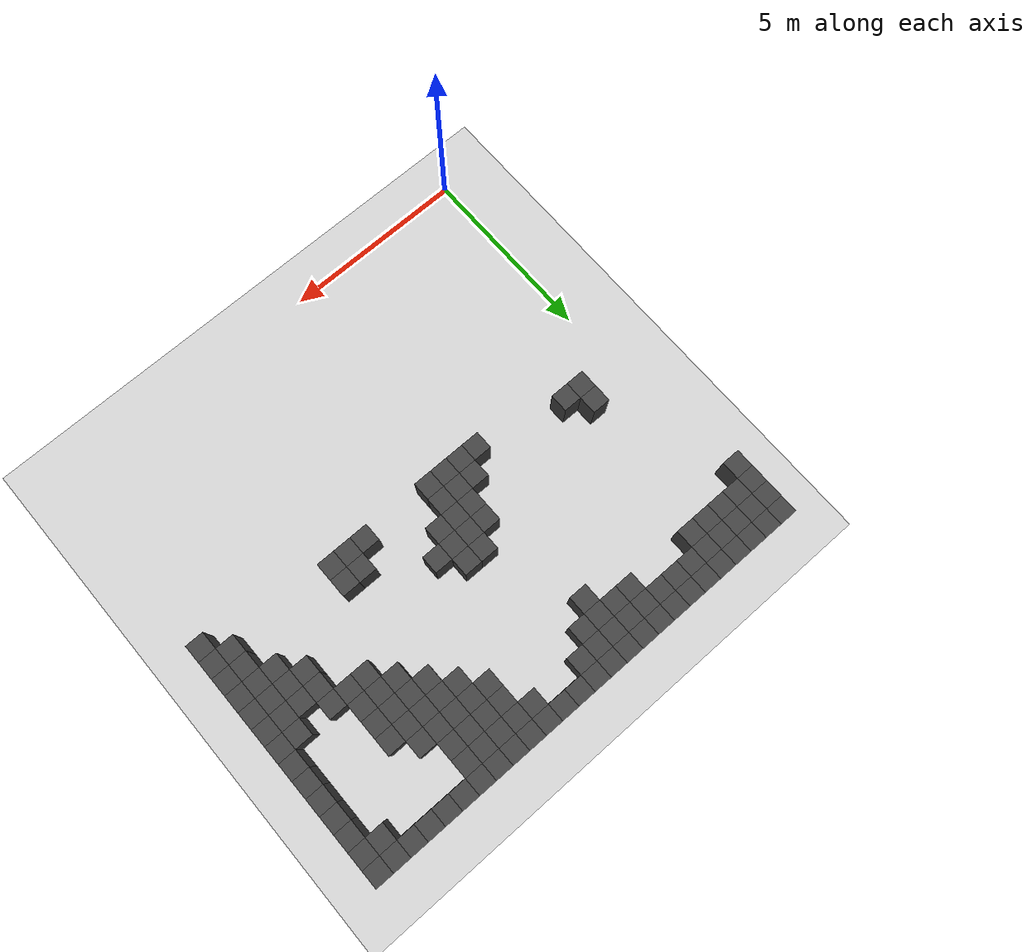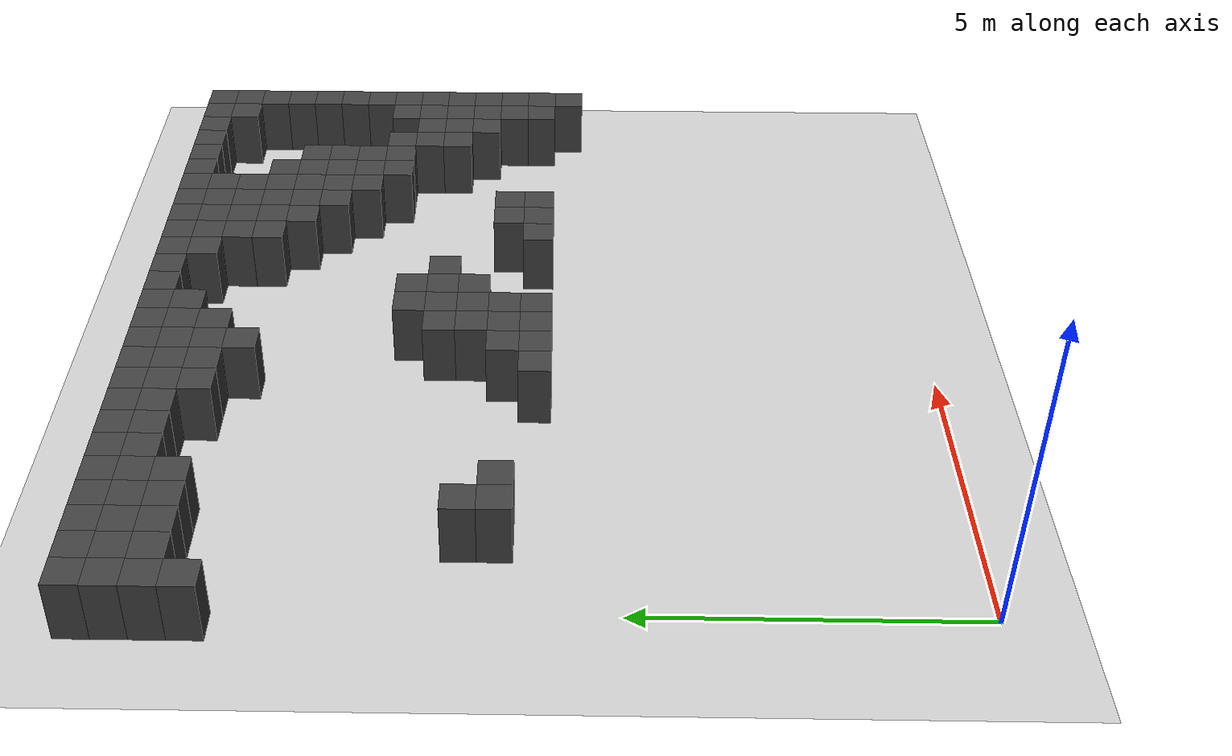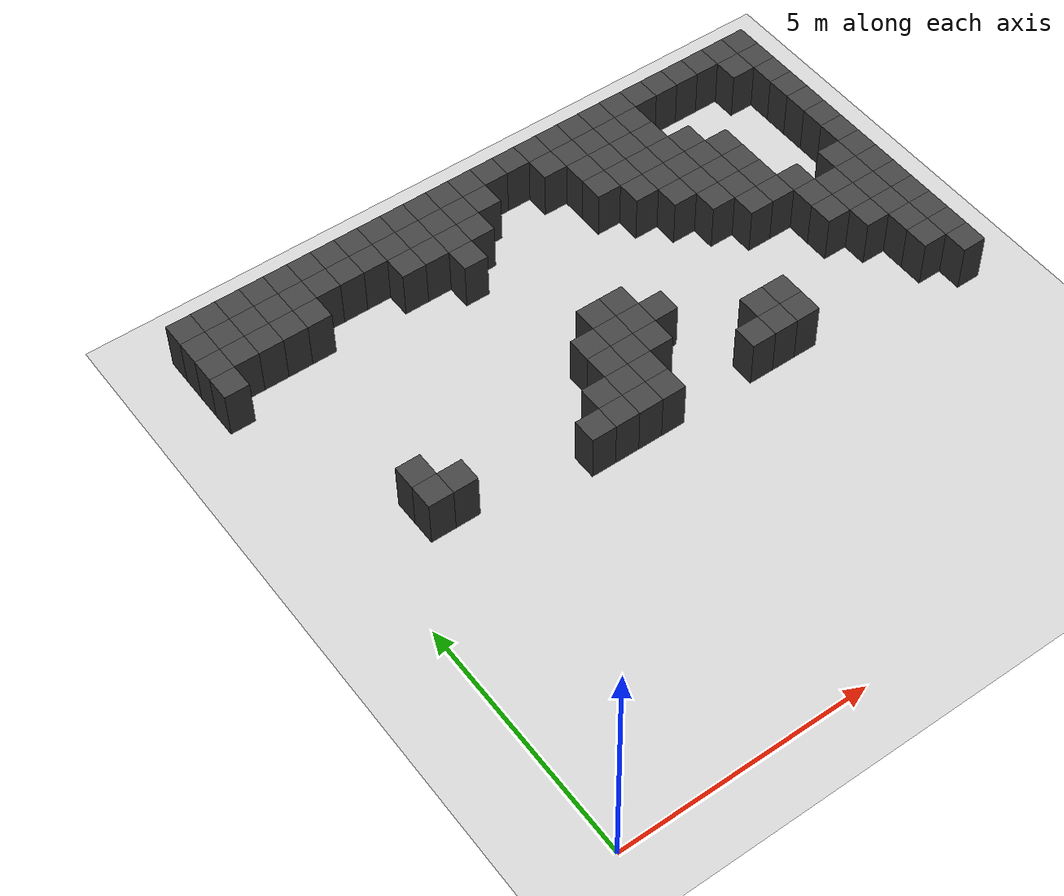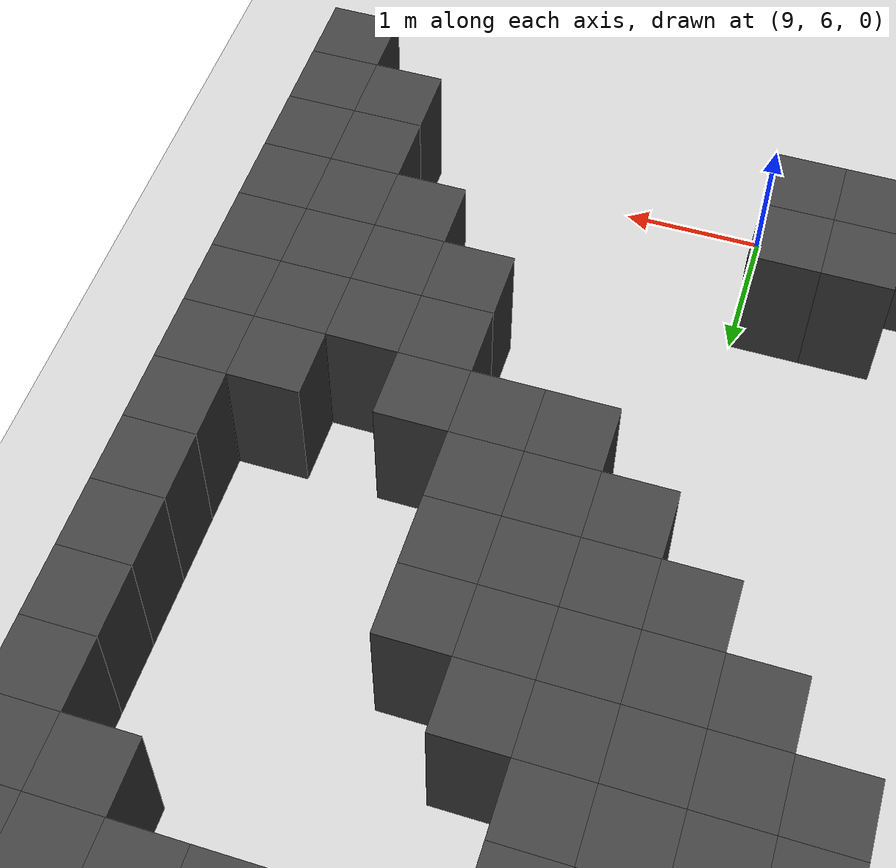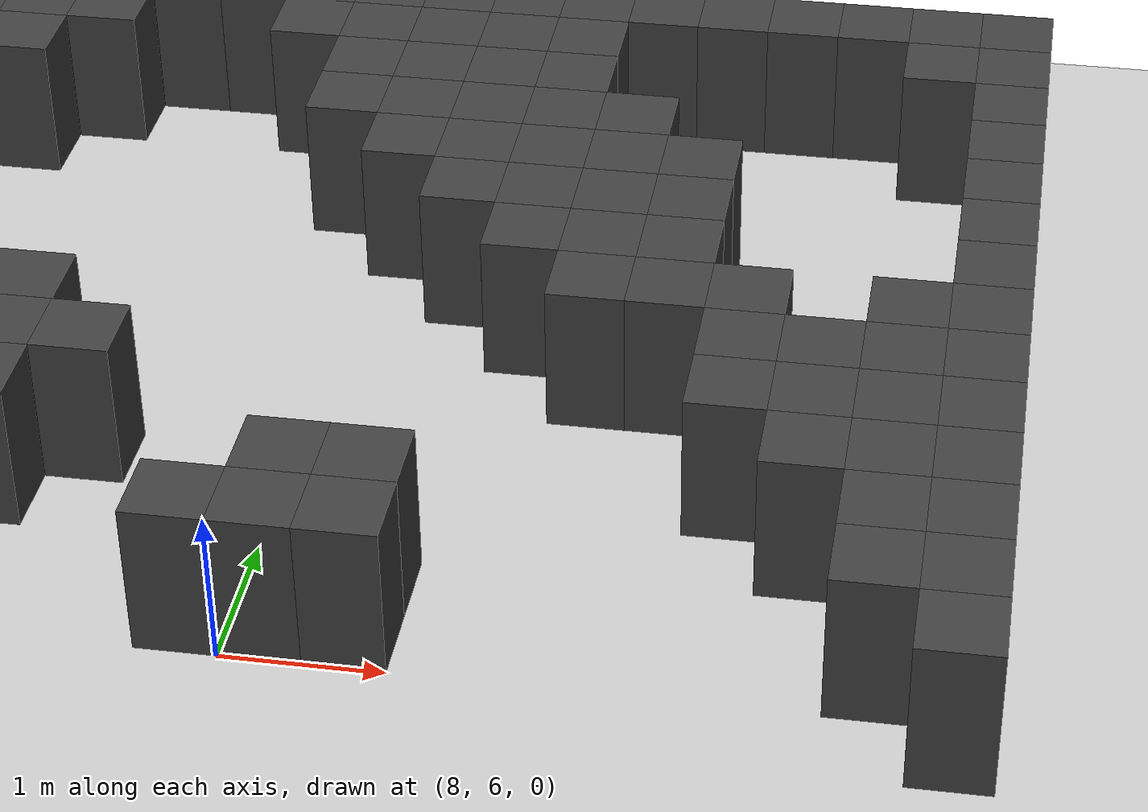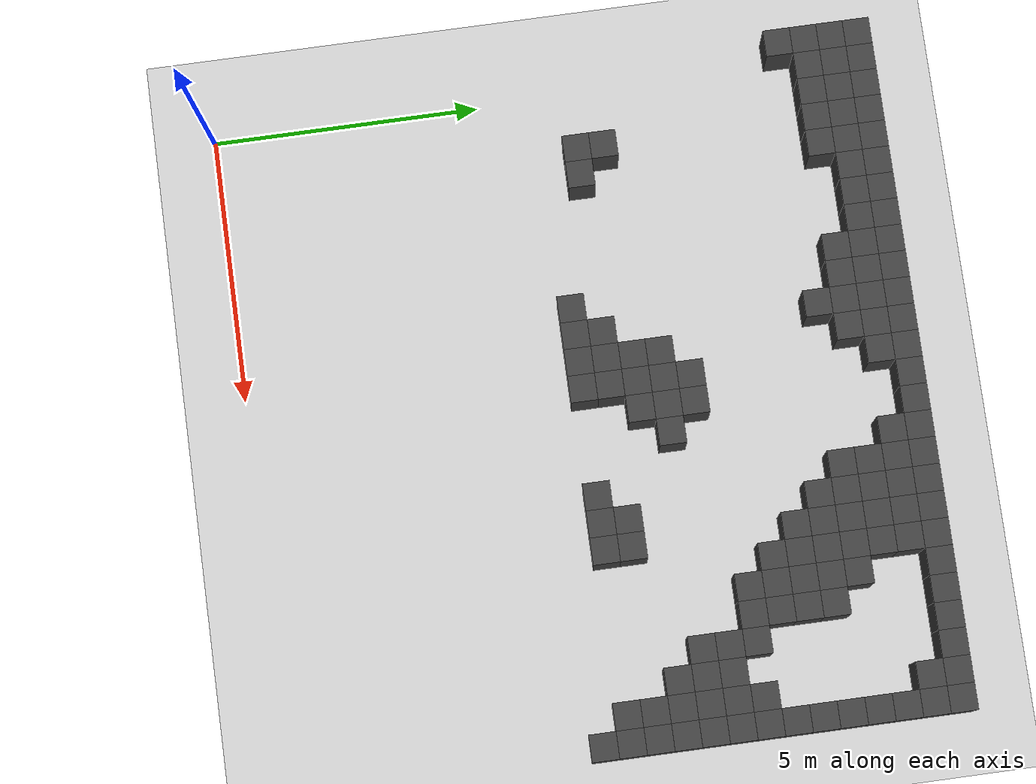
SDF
<sdf version="1.7">
 <world name="map_9713">
  <model name="ground_plane">
   <static>true</static>
   <link name="link">
    <collision name="collision">
     <geometry><plane><normal>0 0 1</normal><size>200 200</size></plane></geometry>
    </collision>
    <visual name="visual">
     <geometry><plane><normal>0 0 1</normal><size>200 200</size></plane></geometry>
     <material><ambient>0.8 0.8 0.8 1</ambient><diffuse>0.8 0.8 0.8 1</diffuse></material>
    </visual>
   </link>
  </model>
  <model name="maze_environment">
   <static>true</static>
   <link name="wall_24">
    <pose>-0.250 12.250 0.500 0 0 0</pose>
    <collision name="col"><geometry><box><size>0.5 0.5 1.0</size></box></geometry></collision>
    <visual name="vis">
     <geometry><box><size>0.5 0.5 1.0</size></box></geometry>
     <material><ambient>0.15 0.15 0.15 1</ambient><diffuse>0.25 0.25 0.25 1</diffuse></material>
    </visual>
   </link>
   <link name="wall_25">
    <pose>0.250 12.250 0.500 0 0 0</pose>
    <collision name="col"><geometry><box><size>0.5 0.5 1.0</size></box></geometry></collision>
    <visual name="vis">
     <geometry><box><size>0.5 0.5 1.0</size></box></geometry>
     <material><ambient>0.15 0.15 0.15 1</ambient><diffuse>0.25 0.25 0.25 1</diffuse></material>
    </visual>
   </link>
   <link name="wall_26">
    <pose>0.750 12.250 0.500 0 0 0</pose>
    <collision name="col"><geometry><box><size>0.5 0.5 1.0</size></box></geometry></collision>
    <visual name="vis">
     <geometry><box><size>0.5 0.5 1.0</size></box></geometry>
     <material><ambient>0.15 0.15 0.15 1</ambient><diffuse>0.25 0.25 0.25 1</diffuse></material>
    </visual>
   </link>
   <link name="wall_27">
    <pose>1.250 12.250 0.500 0 0 0</pose>
    <collision name="col"><geometry><box><size>0.5 0.5 1.0</size></box></geometry></collision>
    <visual name="vis">
     <geometry><box><size>0.5 0.5 1.0</size></box></geometry>
     <material><ambient>0.15 0.15 0.15 1</ambient><diffuse>0.25 0.25 0.25 1</diffuse></material>
    </visual>
   </link>
   <link name="wall_28">
    <pose>1.750 12.250 0.500 0 0 0</pose>
    <collision name="col"><geometry><box><size>0.5 0.5 1.0</size></box></geometry></collision>
    <visual name="vis">
     <geometry><box><size>0.5 0.5 1.0</size></box></geometry>
     <material><ambient>0.15 0.15 0.15 1</ambient><diffuse>0.25 0.25 0.25 1</diffuse></material>
    </visual>
   </link>
   <link name="wall_29">
    <pose>2.250 12.250 0.500 0 0 0</pose>
    <collision name="col"><geometry><box><size>0.5 0.5 1.0</size></box></geometry></collision>
    <visual name="vis">
     <geometry><box><size>0.5 0.5 1.0</size></box></geometry>
     <material><ambient>0.15 0.15 0.15 1</ambient><diffuse>0.25 0.25 0.25 1</diffuse></material>
    </visual>
   </link>
   <link name="wall_30">
    <pose>2.750 12.250 0.500 0 0 0</pose>
    <collision name="col"><geometry><box><size>0.5 0.5 1.0</size></box></geometry></collision>
    <visual name="vis">
     <geometry><box><size>0.5 0.5 1.0</size></box></geometry>
     <material><ambient>0.15 0.15 0.15 1</ambient><diffuse>0.25 0.25 0.25 1</diffuse></material>
    </visual>
   </link>
   <link name="wall_31">
    <pose>3.250 12.250 0.500 0 0 0</pose>
    <collision name="col"><geometry><box><size>0.5 0.5 1.0</size></box></geometry></collision>
    <visual name="vis">
     <geometry><box><size>0.5 0.5 1.0</size></box></geometry>
     <material><ambient>0.15 0.15 0.15 1</ambient><diffuse>0.25 0.25 0.25 1</diffuse></material>
    </visual>
   </link>
   <link name="wall_32">
    <pose>3.750 12.250 0.500 0 0 0</pose>
    <collision name="col"><geometry><box><size>0.5 0.5 1.0</size></box></geometry></collision>
    <visual name="vis">
     <geometry><box><size>0.5 0.5 1.0</size></box></geometry>
     <material><ambient>0.15 0.15 0.15 1</ambient><diffuse>0.25 0.25 0.25 1</diffuse></material>
    </visual>
   </link>
   <link name="wall_33">
    <pose>4.250 12.250 0.500 0 0 0</pose>
    <collision name="col"><geometry><box><size>0.5 0.5 1.0</size></box></geometry></collision>
    <visual name="vis">
     <geometry><box><size>0.5 0.5 1.0</size></box></geometry>
     <material><ambient>0.15 0.15 0.15 1</ambient><diffuse>0.25 0.25 0.25 1</diffuse></material>
    </visual>
   </link>
   <link name="wall_34">
    <pose>4.750 12.250 0.500 0 0 0</pose>
    <collision name="col"><geometry><box><size>0.5 0.5 1.0</size></box></geometry></collision>
    <visual name="vis">
     <geometry><box><size>0.5 0.5 1.0</size></box></geometry>
     <material><ambient>0.15 0.15 0.15 1</ambient><diffuse>0.25 0.25 0.25 1</diffuse></material>
    </visual>
   </link>
   <link name="wall_35">
    <pose>5.250 12.250 0.500 0 0 0</pose>
    <collision name="col"><geometry><box><size>0.5 0.5 1.0</size></box></geometry></collision>
    <visual name="vis">
     <geometry><box><size>0.5 0.5 1.0</size></box></geometry>
     <material><ambient>0.15 0.15 0.15 1</ambient><diffuse>0.25 0.25 0.25 1</diffuse></material>
    </visual>
   </link>
   <link name="wall_36">
    <pose>5.750 12.250 0.500 0 0 0</pose>
    <collision name="col"><geometry><box><size>0.5 0.5 1.0</size></box></geometry></collision>
    <visual name="vis">
     <geometry><box><size>0.5 0.5 1.0</size></box></geometry>
     <material><ambient>0.15 0.15 0.15 1</ambient><diffuse>0.25 0.25 0.25 1</diffuse></material>
    </visual>
   </link>
   <link name="wall_37">
    <pose>6.250 12.250 0.500 0 0 0</pose>
    <collision name="col"><geometry><box><size>0.5 0.5 1.0</size></box></geometry></collision>
    <visual name="vis">
     <geometry><box><size>0.5 0.5 1.0</size></box></geometry>
     <material><ambient>0.15 0.15 0.15 1</ambient><diffuse>0.25 0.25 0.25 1</diffuse></material>
    </visual>
   </link>
   <link name="wall_38">
    <pose>6.750 12.250 0.500 0 0 0</pose>
    <collision name="col"><geometry><box><size>0.5 0.5 1.0</size></box></geometry></collision>
    <visual name="vis">
     <geometry><box><size>0.5 0.5 1.0</size></box></geometry>
     <material><ambient>0.15 0.15 0.15 1</ambient><diffuse>0.25 0.25 0.25 1</diffuse></material>
    </visual>
   </link>
   <link name="wall_39">
    <pose>7.250 12.250 0.500 0 0 0</pose>
    <collision name="col"><geometry><box><size>0.5 0.5 1.0</size></box></geometry></collision>
    <visual name="vis">
     <geometry><box><size>0.5 0.5 1.0</size></box></geometry>
     <material><ambient>0.15 0.15 0.15 1</ambient><diffuse>0.25 0.25 0.25 1</diffuse></material>
    </visual>
   </link>
   <link name="wall_40">
    <pose>7.750 12.250 0.500 0 0 0</pose>
    <collision name="col"><geometry><box><size>0.5 0.5 1.0</size></box></geometry></collision>
    <visual name="vis">
     <geometry><box><size>0.5 0.5 1.0</size></box></geometry>
     <material><ambient>0.15 0.15 0.15 1</ambient><diffuse>0.25 0.25 0.25 1</diffuse></material>
    </visual>
   </link>
   <link name="wall_41">
    <pose>8.250 12.250 0.500 0 0 0</pose>
    <collision name="col"><geometry><box><size>0.5 0.5 1.0</size></box></geometry></collision>
    <visual name="vis">
     <geometry><box><size>0.5 0.5 1.0</size></box></geometry>
     <material><ambient>0.15 0.15 0.15 1</ambient><diffuse>0.25 0.25 0.25 1</diffuse></material>
    </visual>
   </link>
   <link name="wall_42">
    <pose>8.750 12.250 0.500 0 0 0</pose>
    <collision name="col"><geometry><box><size>0.5 0.5 1.0</size></box></geometry></collision>
    <visual name="vis">
     <geometry><box><size>0.5 0.5 1.0</size></box></geometry>
     <material><ambient>0.15 0.15 0.15 1</ambient><diffuse>0.25 0.25 0.25 1</diffuse></material>
    </visual>
   </link>
   <link name="wall_43">
    <pose>9.250 12.250 0.500 0 0 0</pose>
    <collision name="col"><geometry><box><size>0.5 0.5 1.0</size></box></geometry></collision>
    <visual name="vis">
     <geometry><box><size>0.5 0.5 1.0</size></box></geometry>
     <material><ambient>0.15 0.15 0.15 1</ambient><diffuse>0.25 0.25 0.25 1</diffuse></material>
    </visual>
   </link>
   <link name="wall_44">
    <pose>9.750 12.250 0.500 0 0 0</pose>
    <collision name="col"><geometry><box><size>0.5 0.5 1.0</size></box></geometry></collision>
    <visual name="vis">
     <geometry><box><size>0.5 0.5 1.0</size></box></geometry>
     <material><ambient>0.15 0.15 0.15 1</ambient><diffuse>0.25 0.25 0.25 1</diffuse></material>
    </visual>
   </link>
   <link name="wall_45">
    <pose>10.250 12.250 0.500 0 0 0</pose>
    <collision name="col"><geometry><box><size>0.5 0.5 1.0</size></box></geometry></collision>
    <visual name="vis">
     <geometry><box><size>0.5 0.5 1.0</size></box></geometry>
     <material><ambient>0.15 0.15 0.15 1</ambient><diffuse>0.25 0.25 0.25 1</diffuse></material>
    </visual>
   </link>
   <link name="wall_46">
    <pose>10.750 12.250 0.500 0 0 0</pose>
    <collision name="col"><geometry><box><size>0.5 0.5 1.0</size></box></geometry></collision>
    <visual name="vis">
     <geometry><box><size>0.5 0.5 1.0</size></box></geometry>
     <material><ambient>0.15 0.15 0.15 1</ambient><diffuse>0.25 0.25 0.25 1</diffuse></material>
    </visual>
   </link>
   <link name="wall_47">
    <pose>11.250 12.250 0.500 0 0 0</pose>
    <collision name="col"><geometry><box><size>0.5 0.5 1.0</size></box></geometry></collision>
    <visual name="vis">
     <geometry><box><size>0.5 0.5 1.0</size></box></geometry>
     <material><ambient>0.15 0.15 0.15 1</ambient><diffuse>0.25 0.25 0.25 1</diffuse></material>
    </visual>
   </link>
   <link name="wall_48">
    <pose>11.750 12.250 0.500 0 0 0</pose>
    <collision name="col"><geometry><box><size>0.5 0.5 1.0</size></box></geometry></collision>
    <visual name="vis">
     <geometry><box><size>0.5 0.5 1.0</size></box></geometry>
     <material><ambient>0.15 0.15 0.15 1</ambient><diffuse>0.25 0.25 0.25 1</diffuse></material>
    </visual>
   </link>
   <link name="wall_49">
    <pose>12.250 12.250 0.500 0 0 0</pose>
    <collision name="col"><geometry><box><size>0.5 0.5 1.0</size></box></geometry></collision>
    <visual name="vis">
     <geometry><box><size>0.5 0.5 1.0</size></box></geometry>
     <material><ambient>0.15 0.15 0.15 1</ambient><diffuse>0.25 0.25 0.25 1</diffuse></material>
    </visual>
   </link>
   <link name="wall_62">
    <pose>-0.250 11.750 0.500 0 0 0</pose>
    <collision name="col"><geometry><box><size>0.5 0.5 1.0</size></box></geometry></collision>
    <visual name="vis">
     <geometry><box><size>0.5 0.5 1.0</size></box></geometry>
     <material><ambient>0.15 0.15 0.15 1</ambient><diffuse>0.25 0.25 0.25 1</diffuse></material>
    </visual>
   </link>
   <link name="wall_63">
    <pose>0.250 11.750 0.500 0 0 0</pose>
    <collision name="col"><geometry><box><size>0.5 0.5 1.0</size></box></geometry></collision>
    <visual name="vis">
     <geometry><box><size>0.5 0.5 1.0</size></box></geometry>
     <material><ambient>0.15 0.15 0.15 1</ambient><diffuse>0.25 0.25 0.25 1</diffuse></material>
    </visual>
   </link>
   <link name="wall_64">
    <pose>0.750 11.750 0.500 0 0 0</pose>
    <collision name="col"><geometry><box><size>0.5 0.5 1.0</size></box></geometry></collision>
    <visual name="vis">
     <geometry><box><size>0.5 0.5 1.0</size></box></geometry>
     <material><ambient>0.15 0.15 0.15 1</ambient><diffuse>0.25 0.25 0.25 1</diffuse></material>
    </visual>
   </link>
   <link name="wall_65">
    <pose>1.250 11.750 0.500 0 0 0</pose>
    <collision name="col"><geometry><box><size>0.5 0.5 1.0</size></box></geometry></collision>
    <visual name="vis">
     <geometry><box><size>0.5 0.5 1.0</size></box></geometry>
     <material><ambient>0.15 0.15 0.15 1</ambient><diffuse>0.25 0.25 0.25 1</diffuse></material>
    </visual>
   </link>
   <link name="wall_66">
    <pose>1.750 11.750 0.500 0 0 0</pose>
    <collision name="col"><geometry><box><size>0.5 0.5 1.0</size></box></geometry></collision>
    <visual name="vis">
     <geometry><box><size>0.5 0.5 1.0</size></box></geometry>
     <material><ambient>0.15 0.15 0.15 1</ambient><diffuse>0.25 0.25 0.25 1</diffuse></material>
    </visual>
   </link>
   <link name="wall_67">
    <pose>2.250 11.750 0.500 0 0 0</pose>
    <collision name="col"><geometry><box><size>0.5 0.5 1.0</size></box></geometry></collision>
    <visual name="vis">
     <geometry><box><size>0.5 0.5 1.0</size></box></geometry>
     <material><ambient>0.15 0.15 0.15 1</ambient><diffuse>0.25 0.25 0.25 1</diffuse></material>
    </visual>
   </link>
   <link name="wall_68">
    <pose>2.750 11.750 0.500 0 0 0</pose>
    <collision name="col"><geometry><box><size>0.5 0.5 1.0</size></box></geometry></collision>
    <visual name="vis">
     <geometry><box><size>0.5 0.5 1.0</size></box></geometry>
     <material><ambient>0.15 0.15 0.15 1</ambient><diffuse>0.25 0.25 0.25 1</diffuse></material>
    </visual>
   </link>
   <link name="wall_69">
    <pose>3.250 11.750 0.500 0 0 0</pose>
    <collision name="col"><geometry><box><size>0.5 0.5 1.0</size></box></geometry></collision>
    <visual name="vis">
     <geometry><box><size>0.5 0.5 1.0</size></box></geometry>
     <material><ambient>0.15 0.15 0.15 1</ambient><diffuse>0.25 0.25 0.25 1</diffuse></material>
    </visual>
   </link>
   <link name="wall_70">
    <pose>3.750 11.750 0.500 0 0 0</pose>
    <collision name="col"><geometry><box><size>0.5 0.5 1.0</size></box></geometry></collision>
    <visual name="vis">
     <geometry><box><size>0.5 0.5 1.0</size></box></geometry>
     <material><ambient>0.15 0.15 0.15 1</ambient><diffuse>0.25 0.25 0.25 1</diffuse></material>
    </visual>
   </link>
   <link name="wall_71">
    <pose>4.250 11.750 0.500 0 0 0</pose>
    <collision name="col"><geometry><box><size>0.5 0.5 1.0</size></box></geometry></collision>
    <visual name="vis">
     <geometry><box><size>0.5 0.5 1.0</size></box></geometry>
     <material><ambient>0.15 0.15 0.15 1</ambient><diffuse>0.25 0.25 0.25 1</diffuse></material>
    </visual>
   </link>
   <link name="wall_72">
    <pose>4.750 11.750 0.500 0 0 0</pose>
    <collision name="col"><geometry><box><size>0.5 0.5 1.0</size></box></geometry></collision>
    <visual name="vis">
     <geometry><box><size>0.5 0.5 1.0</size></box></geometry>
     <material><ambient>0.15 0.15 0.15 1</ambient><diffuse>0.25 0.25 0.25 1</diffuse></material>
    </visual>
   </link>
   <link name="wall_73">
    <pose>5.250 11.750 0.500 0 0 0</pose>
    <collision name="col"><geometry><box><size>0.5 0.5 1.0</size></box></geometry></collision>
    <visual name="vis">
     <geometry><box><size>0.5 0.5 1.0</size></box></geometry>
     <material><ambient>0.15 0.15 0.15 1</ambient><diffuse>0.25 0.25 0.25 1</diffuse></material>
    </visual>
   </link>
   <link name="wall_74">
    <pose>5.750 11.750 0.500 0 0 0</pose>
    <collision name="col"><geometry><box><size>0.5 0.5 1.0</size></box></geometry></collision>
    <visual name="vis">
     <geometry><box><size>0.5 0.5 1.0</size></box></geometry>
     <material><ambient>0.15 0.15 0.15 1</ambient><diffuse>0.25 0.25 0.25 1</diffuse></material>
    </visual>
   </link>
   <link name="wall_75">
    <pose>7.250 11.750 0.500 0 0 0</pose>
    <collision name="col"><geometry><box><size>0.5 0.5 1.0</size></box></geometry></collision>
    <visual name="vis">
     <geometry><box><size>0.5 0.5 1.0</size></box></geometry>
     <material><ambient>0.15 0.15 0.15 1</ambient><diffuse>0.25 0.25 0.25 1</diffuse></material>
    </visual>
   </link>
   <link name="wall_76">
    <pose>7.750 11.750 0.500 0 0 0</pose>
    <collision name="col"><geometry><box><size>0.5 0.5 1.0</size></box></geometry></collision>
    <visual name="vis">
     <geometry><box><size>0.5 0.5 1.0</size></box></geometry>
     <material><ambient>0.15 0.15 0.15 1</ambient><diffuse>0.25 0.25 0.25 1</diffuse></material>
    </visual>
   </link>
   <link name="wall_77">
    <pose>8.250 11.750 0.500 0 0 0</pose>
    <collision name="col"><geometry><box><size>0.5 0.5 1.0</size></box></geometry></collision>
    <visual name="vis">
     <geometry><box><size>0.5 0.5 1.0</size></box></geometry>
     <material><ambient>0.15 0.15 0.15 1</ambient><diffuse>0.25 0.25 0.25 1</diffuse></material>
    </visual>
   </link>
   <link name="wall_78">
    <pose>8.750 11.750 0.500 0 0 0</pose>
    <collision name="col"><geometry><box><size>0.5 0.5 1.0</size></box></geometry></collision>
    <visual name="vis">
     <geometry><box><size>0.5 0.5 1.0</size></box></geometry>
     <material><ambient>0.15 0.15 0.15 1</ambient><diffuse>0.25 0.25 0.25 1</diffuse></material>
    </visual>
   </link>
   <link name="wall_79">
    <pose>9.250 11.750 0.500 0 0 0</pose>
    <collision name="col"><geometry><box><size>0.5 0.5 1.0</size></box></geometry></collision>
    <visual name="vis">
     <geometry><box><size>0.5 0.5 1.0</size></box></geometry>
     <material><ambient>0.15 0.15 0.15 1</ambient><diffuse>0.25 0.25 0.25 1</diffuse></material>
    </visual>
   </link>
   <link name="wall_80">
    <pose>11.750 11.750 0.500 0 0 0</pose>
    <collision name="col"><geometry><box><size>0.5 0.5 1.0</size></box></geometry></collision>
    <visual name="vis">
     <geometry><box><size>0.5 0.5 1.0</size></box></geometry>
     <material><ambient>0.15 0.15 0.15 1</ambient><diffuse>0.25 0.25 0.25 1</diffuse></material>
    </visual>
   </link>
   <link name="wall_81">
    <pose>12.250 11.750 0.500 0 0 0</pose>
    <collision name="col"><geometry><box><size>0.5 0.5 1.0</size></box></geometry></collision>
    <visual name="vis">
     <geometry><box><size>0.5 0.5 1.0</size></box></geometry>
     <material><ambient>0.15 0.15 0.15 1</ambient><diffuse>0.25 0.25 0.25 1</diffuse></material>
    </visual>
   </link>
   <link name="wall_91">
    <pose>-0.250 11.250 0.500 0 0 0</pose>
    <collision name="col"><geometry><box><size>0.5 0.5 1.0</size></box></geometry></collision>
    <visual name="vis">
     <geometry><box><size>0.5 0.5 1.0</size></box></geometry>
     <material><ambient>0.15 0.15 0.15 1</ambient><diffuse>0.25 0.25 0.25 1</diffuse></material>
    </visual>
   </link>
   <link name="wall_92">
    <pose>0.250 11.250 0.500 0 0 0</pose>
    <collision name="col"><geometry><box><size>0.5 0.5 1.0</size></box></geometry></collision>
    <visual name="vis">
     <geometry><box><size>0.5 0.5 1.0</size></box></geometry>
     <material><ambient>0.15 0.15 0.15 1</ambient><diffuse>0.25 0.25 0.25 1</diffuse></material>
    </visual>
   </link>
   <link name="wall_93">
    <pose>0.750 11.250 0.500 0 0 0</pose>
    <collision name="col"><geometry><box><size>0.5 0.5 1.0</size></box></geometry></collision>
    <visual name="vis">
     <geometry><box><size>0.5 0.5 1.0</size></box></geometry>
     <material><ambient>0.15 0.15 0.15 1</ambient><diffuse>0.25 0.25 0.25 1</diffuse></material>
    </visual>
   </link>
   <link name="wall_94">
    <pose>1.250 11.250 0.500 0 0 0</pose>
    <collision name="col"><geometry><box><size>0.5 0.5 1.0</size></box></geometry></collision>
    <visual name="vis">
     <geometry><box><size>0.5 0.5 1.0</size></box></geometry>
     <material><ambient>0.15 0.15 0.15 1</ambient><diffuse>0.25 0.25 0.25 1</diffuse></material>
    </visual>
   </link>
   <link name="wall_95">
    <pose>1.750 11.250 0.500 0 0 0</pose>
    <collision name="col"><geometry><box><size>0.5 0.5 1.0</size></box></geometry></collision>
    <visual name="vis">
     <geometry><box><size>0.5 0.5 1.0</size></box></geometry>
     <material><ambient>0.15 0.15 0.15 1</ambient><diffuse>0.25 0.25 0.25 1</diffuse></material>
    </visual>
   </link>
   <link name="wall_96">
    <pose>3.750 11.250 0.500 0 0 0</pose>
    <collision name="col"><geometry><box><size>0.5 0.5 1.0</size></box></geometry></collision>
    <visual name="vis">
     <geometry><box><size>0.5 0.5 1.0</size></box></geometry>
     <material><ambient>0.15 0.15 0.15 1</ambient><diffuse>0.25 0.25 0.25 1</diffuse></material>
    </visual>
   </link>
   <link name="wall_97">
    <pose>4.250 11.250 0.500 0 0 0</pose>
    <collision name="col"><geometry><box><size>0.5 0.5 1.0</size></box></geometry></collision>
    <visual name="vis">
     <geometry><box><size>0.5 0.5 1.0</size></box></geometry>
     <material><ambient>0.15 0.15 0.15 1</ambient><diffuse>0.25 0.25 0.25 1</diffuse></material>
    </visual>
   </link>
   <link name="wall_98">
    <pose>4.750 11.250 0.500 0 0 0</pose>
    <collision name="col"><geometry><box><size>0.5 0.5 1.0</size></box></geometry></collision>
    <visual name="vis">
     <geometry><box><size>0.5 0.5 1.0</size></box></geometry>
     <material><ambient>0.15 0.15 0.15 1</ambient><diffuse>0.25 0.25 0.25 1</diffuse></material>
    </visual>
   </link>
   <link name="wall_99">
    <pose>5.250 11.250 0.500 0 0 0</pose>
    <collision name="col"><geometry><box><size>0.5 0.5 1.0</size></box></geometry></collision>
    <visual name="vis">
     <geometry><box><size>0.5 0.5 1.0</size></box></geometry>
     <material><ambient>0.15 0.15 0.15 1</ambient><diffuse>0.25 0.25 0.25 1</diffuse></material>
    </visual>
   </link>
   <link name="wall_100">
    <pose>7.750 11.250 0.500 0 0 0</pose>
    <collision name="col"><geometry><box><size>0.5 0.5 1.0</size></box></geometry></collision>
    <visual name="vis">
     <geometry><box><size>0.5 0.5 1.0</size></box></geometry>
     <material><ambient>0.15 0.15 0.15 1</ambient><diffuse>0.25 0.25 0.25 1</diffuse></material>
    </visual>
   </link>
   <link name="wall_101">
    <pose>8.250 11.250 0.500 0 0 0</pose>
    <collision name="col"><geometry><box><size>0.5 0.5 1.0</size></box></geometry></collision>
    <visual name="vis">
     <geometry><box><size>0.5 0.5 1.0</size></box></geometry>
     <material><ambient>0.15 0.15 0.15 1</ambient><diffuse>0.25 0.25 0.25 1</diffuse></material>
    </visual>
   </link>
   <link name="wall_102">
    <pose>8.750 11.250 0.500 0 0 0</pose>
    <collision name="col"><geometry><box><size>0.5 0.5 1.0</size></box></geometry></collision>
    <visual name="vis">
     <geometry><box><size>0.5 0.5 1.0</size></box></geometry>
     <material><ambient>0.15 0.15 0.15 1</ambient><diffuse>0.25 0.25 0.25 1</diffuse></material>
    </visual>
   </link>
   <link name="wall_103">
    <pose>9.250 11.250 0.500 0 0 0</pose>
    <collision name="col"><geometry><box><size>0.5 0.5 1.0</size></box></geometry></collision>
    <visual name="vis">
     <geometry><box><size>0.5 0.5 1.0</size></box></geometry>
     <material><ambient>0.15 0.15 0.15 1</ambient><diffuse>0.25 0.25 0.25 1</diffuse></material>
    </visual>
   </link>
   <link name="wall_104">
    <pose>12.250 11.250 0.500 0 0 0</pose>
    <collision name="col"><geometry><box><size>0.5 0.5 1.0</size></box></geometry></collision>
    <visual name="vis">
     <geometry><box><size>0.5 0.5 1.0</size></box></geometry>
     <material><ambient>0.15 0.15 0.15 1</ambient><diffuse>0.25 0.25 0.25 1</diffuse></material>
    </visual>
   </link>
   <link name="wall_114">
    <pose>-0.250 10.750 0.500 0 0 0</pose>
    <collision name="col"><geometry><box><size>0.5 0.5 1.0</size></box></geometry></collision>
    <visual name="vis">
     <geometry><box><size>0.5 0.5 1.0</size></box></geometry>
     <material><ambient>0.15 0.15 0.15 1</ambient><diffuse>0.25 0.25 0.25 1</diffuse></material>
    </visual>
   </link>
   <link name="wall_115">
    <pose>4.750 10.750 0.500 0 0 0</pose>
    <collision name="col"><geometry><box><size>0.5 0.5 1.0</size></box></geometry></collision>
    <visual name="vis">
     <geometry><box><size>0.5 0.5 1.0</size></box></geometry>
     <material><ambient>0.15 0.15 0.15 1</ambient><diffuse>0.25 0.25 0.25 1</diffuse></material>
    </visual>
   </link>
   <link name="wall_116">
    <pose>7.750 10.750 0.500 0 0 0</pose>
    <collision name="col"><geometry><box><size>0.5 0.5 1.0</size></box></geometry></collision>
    <visual name="vis">
     <geometry><box><size>0.5 0.5 1.0</size></box></geometry>
     <material><ambient>0.15 0.15 0.15 1</ambient><diffuse>0.25 0.25 0.25 1</diffuse></material>
    </visual>
   </link>
   <link name="wall_117">
    <pose>8.250 10.750 0.500 0 0 0</pose>
    <collision name="col"><geometry><box><size>0.5 0.5 1.0</size></box></geometry></collision>
    <visual name="vis">
     <geometry><box><size>0.5 0.5 1.0</size></box></geometry>
     <material><ambient>0.15 0.15 0.15 1</ambient><diffuse>0.25 0.25 0.25 1</diffuse></material>
    </visual>
   </link>
   <link name="wall_118">
    <pose>8.750 10.750 0.500 0 0 0</pose>
    <collision name="col"><geometry><box><size>0.5 0.5 1.0</size></box></geometry></collision>
    <visual name="vis">
     <geometry><box><size>0.5 0.5 1.0</size></box></geometry>
     <material><ambient>0.15 0.15 0.15 1</ambient><diffuse>0.25 0.25 0.25 1</diffuse></material>
    </visual>
   </link>
   <link name="wall_119">
    <pose>9.250 10.750 0.500 0 0 0</pose>
    <collision name="col"><geometry><box><size>0.5 0.5 1.0</size></box></geometry></collision>
    <visual name="vis">
     <geometry><box><size>0.5 0.5 1.0</size></box></geometry>
     <material><ambient>0.15 0.15 0.15 1</ambient><diffuse>0.25 0.25 0.25 1</diffuse></material>
    </visual>
   </link>
   <link name="wall_120">
    <pose>9.750 10.750 0.500 0 0 0</pose>
    <collision name="col"><geometry><box><size>0.5 0.5 1.0</size></box></geometry></collision>
    <visual name="vis">
     <geometry><box><size>0.5 0.5 1.0</size></box></geometry>
     <material><ambient>0.15 0.15 0.15 1</ambient><diffuse>0.25 0.25 0.25 1</diffuse></material>
    </visual>
   </link>
   <link name="wall_121">
    <pose>12.250 10.750 0.500 0 0 0</pose>
    <collision name="col"><geometry><box><size>0.5 0.5 1.0</size></box></geometry></collision>
    <visual name="vis">
     <geometry><box><size>0.5 0.5 1.0</size></box></geometry>
     <material><ambient>0.15 0.15 0.15 1</ambient><diffuse>0.25 0.25 0.25 1</diffuse></material>
    </visual>
   </link>
   <link name="wall_133">
    <pose>8.250 10.250 0.500 0 0 0</pose>
    <collision name="col"><geometry><box><size>0.5 0.5 1.0</size></box></geometry></collision>
    <visual name="vis">
     <geometry><box><size>0.5 0.5 1.0</size></box></geometry>
     <material><ambient>0.15 0.15 0.15 1</ambient><diffuse>0.25 0.25 0.25 1</diffuse></material>
    </visual>
   </link>
   <link name="wall_134">
    <pose>8.750 10.250 0.500 0 0 0</pose>
    <collision name="col"><geometry><box><size>0.5 0.5 1.0</size></box></geometry></collision>
    <visual name="vis">
     <geometry><box><size>0.5 0.5 1.0</size></box></geometry>
     <material><ambient>0.15 0.15 0.15 1</ambient><diffuse>0.25 0.25 0.25 1</diffuse></material>
    </visual>
   </link>
   <link name="wall_135">
    <pose>9.250 10.250 0.500 0 0 0</pose>
    <collision name="col"><geometry><box><size>0.5 0.5 1.0</size></box></geometry></collision>
    <visual name="vis">
     <geometry><box><size>0.5 0.5 1.0</size></box></geometry>
     <material><ambient>0.15 0.15 0.15 1</ambient><diffuse>0.25 0.25 0.25 1</diffuse></material>
    </visual>
   </link>
   <link name="wall_136">
    <pose>9.750 10.250 0.500 0 0 0</pose>
    <collision name="col"><geometry><box><size>0.5 0.5 1.0</size></box></geometry></collision>
    <visual name="vis">
     <geometry><box><size>0.5 0.5 1.0</size></box></geometry>
     <material><ambient>0.15 0.15 0.15 1</ambient><diffuse>0.25 0.25 0.25 1</diffuse></material>
    </visual>
   </link>
   <link name="wall_137">
    <pose>10.250 10.250 0.500 0 0 0</pose>
    <collision name="col"><geometry><box><size>0.5 0.5 1.0</size></box></geometry></collision>
    <visual name="vis">
     <geometry><box><size>0.5 0.5 1.0</size></box></geometry>
     <material><ambient>0.15 0.15 0.15 1</ambient><diffuse>0.25 0.25 0.25 1</diffuse></material>
    </visual>
   </link>
   <link name="wall_138">
    <pose>12.250 10.250 0.500 0 0 0</pose>
    <collision name="col"><geometry><box><size>0.5 0.5 1.0</size></box></geometry></collision>
    <visual name="vis">
     <geometry><box><size>0.5 0.5 1.0</size></box></geometry>
     <material><ambient>0.15 0.15 0.15 1</ambient><diffuse>0.25 0.25 0.25 1</diffuse></material>
    </visual>
   </link>
   <link name="wall_148">
    <pose>8.750 9.750 0.500 0 0 0</pose>
    <collision name="col"><geometry><box><size>0.5 0.5 1.0</size></box></geometry></collision>
    <visual name="vis">
     <geometry><box><size>0.5 0.5 1.0</size></box></geometry>
     <material><ambient>0.15 0.15 0.15 1</ambient><diffuse>0.25 0.25 0.25 1</diffuse></material>
    </visual>
   </link>
   <link name="wall_149">
    <pose>9.250 9.750 0.500 0 0 0</pose>
    <collision name="col"><geometry><box><size>0.5 0.5 1.0</size></box></geometry></collision>
    <visual name="vis">
     <geometry><box><size>0.5 0.5 1.0</size></box></geometry>
     <material><ambient>0.15 0.15 0.15 1</ambient><diffuse>0.25 0.25 0.25 1</diffuse></material>
    </visual>
   </link>
   <link name="wall_150">
    <pose>9.750 9.750 0.500 0 0 0</pose>
    <collision name="col"><geometry><box><size>0.5 0.5 1.0</size></box></geometry></collision>
    <visual name="vis">
     <geometry><box><size>0.5 0.5 1.0</size></box></geometry>
     <material><ambient>0.15 0.15 0.15 1</ambient><diffuse>0.25 0.25 0.25 1</diffuse></material>
    </visual>
   </link>
   <link name="wall_151">
    <pose>10.250 9.750 0.500 0 0 0</pose>
    <collision name="col"><geometry><box><size>0.5 0.5 1.0</size></box></geometry></collision>
    <visual name="vis">
     <geometry><box><size>0.5 0.5 1.0</size></box></geometry>
     <material><ambient>0.15 0.15 0.15 1</ambient><diffuse>0.25 0.25 0.25 1</diffuse></material>
    </visual>
   </link>
   <link name="wall_152">
    <pose>12.250 9.750 0.500 0 0 0</pose>
    <collision name="col"><geometry><box><size>0.5 0.5 1.0</size></box></geometry></collision>
    <visual name="vis">
     <geometry><box><size>0.5 0.5 1.0</size></box></geometry>
     <material><ambient>0.15 0.15 0.15 1</ambient><diffuse>0.25 0.25 0.25 1</diffuse></material>
    </visual>
   </link>
   <link name="wall_159">
    <pose>9.250 9.250 0.500 0 0 0</pose>
    <collision name="col"><geometry><box><size>0.5 0.5 1.0</size></box></geometry></collision>
    <visual name="vis">
     <geometry><box><size>0.5 0.5 1.0</size></box></geometry>
     <material><ambient>0.15 0.15 0.15 1</ambient><diffuse>0.25 0.25 0.25 1</diffuse></material>
    </visual>
   </link>
   <link name="wall_160">
    <pose>9.750 9.250 0.500 0 0 0</pose>
    <collision name="col"><geometry><box><size>0.5 0.5 1.0</size></box></geometry></collision>
    <visual name="vis">
     <geometry><box><size>0.5 0.5 1.0</size></box></geometry>
     <material><ambient>0.15 0.15 0.15 1</ambient><diffuse>0.25 0.25 0.25 1</diffuse></material>
    </visual>
   </link>
   <link name="wall_161">
    <pose>10.250 9.250 0.500 0 0 0</pose>
    <collision name="col"><geometry><box><size>0.5 0.5 1.0</size></box></geometry></collision>
    <visual name="vis">
     <geometry><box><size>0.5 0.5 1.0</size></box></geometry>
     <material><ambient>0.15 0.15 0.15 1</ambient><diffuse>0.25 0.25 0.25 1</diffuse></material>
    </visual>
   </link>
   <link name="wall_162">
    <pose>12.250 9.250 0.500 0 0 0</pose>
    <collision name="col"><geometry><box><size>0.5 0.5 1.0</size></box></geometry></collision>
    <visual name="vis">
     <geometry><box><size>0.5 0.5 1.0</size></box></geometry>
     <material><ambient>0.15 0.15 0.15 1</ambient><diffuse>0.25 0.25 0.25 1</diffuse></material>
    </visual>
   </link>
   <link name="wall_164">
    <pose>9.750 8.750 0.500 0 0 0</pose>
    <collision name="col"><geometry><box><size>0.5 0.5 1.0</size></box></geometry></collision>
    <visual name="vis">
     <geometry><box><size>0.5 0.5 1.0</size></box></geometry>
     <material><ambient>0.15 0.15 0.15 1</ambient><diffuse>0.25 0.25 0.25 1</diffuse></material>
    </visual>
   </link>
   <link name="wall_165">
    <pose>10.250 8.750 0.500 0 0 0</pose>
    <collision name="col"><geometry><box><size>0.5 0.5 1.0</size></box></geometry></collision>
    <visual name="vis">
     <geometry><box><size>0.5 0.5 1.0</size></box></geometry>
     <material><ambient>0.15 0.15 0.15 1</ambient><diffuse>0.25 0.25 0.25 1</diffuse></material>
    </visual>
   </link>
   <link name="wall_166">
    <pose>10.750 8.750 0.500 0 0 0</pose>
    <collision name="col"><geometry><box><size>0.5 0.5 1.0</size></box></geometry></collision>
    <visual name="vis">
     <geometry><box><size>0.5 0.5 1.0</size></box></geometry>
     <material><ambient>0.15 0.15 0.15 1</ambient><diffuse>0.25 0.25 0.25 1</diffuse></material>
    </visual>
   </link>
   <link name="wall_167">
    <pose>11.750 8.750 0.500 0 0 0</pose>
    <collision name="col"><geometry><box><size>0.5 0.5 1.0</size></box></geometry></collision>
    <visual name="vis">
     <geometry><box><size>0.5 0.5 1.0</size></box></geometry>
     <material><ambient>0.15 0.15 0.15 1</ambient><diffuse>0.25 0.25 0.25 1</diffuse></material>
    </visual>
   </link>
   <link name="wall_168">
    <pose>12.250 8.750 0.500 0 0 0</pose>
    <collision name="col"><geometry><box><size>0.5 0.5 1.0</size></box></geometry></collision>
    <visual name="vis">
     <geometry><box><size>0.5 0.5 1.0</size></box></geometry>
     <material><ambient>0.15 0.15 0.15 1</ambient><diffuse>0.25 0.25 0.25 1</diffuse></material>
    </visual>
   </link>
   <link name="wall_172">
    <pose>5.750 8.250 0.500 0 0 0</pose>
    <collision name="col"><geometry><box><size>0.5 0.5 1.0</size></box></geometry></collision>
    <visual name="vis">
     <geometry><box><size>0.5 0.5 1.0</size></box></geometry>
     <material><ambient>0.15 0.15 0.15 1</ambient><diffuse>0.25 0.25 0.25 1</diffuse></material>
    </visual>
   </link>
   <link name="wall_173">
    <pose>6.250 8.250 0.500 0 0 0</pose>
    <collision name="col"><geometry><box><size>0.5 0.5 1.0</size></box></geometry></collision>
    <visual name="vis">
     <geometry><box><size>0.5 0.5 1.0</size></box></geometry>
     <material><ambient>0.15 0.15 0.15 1</ambient><diffuse>0.25 0.25 0.25 1</diffuse></material>
    </visual>
   </link>
   <link name="wall_174">
    <pose>10.750 8.250 0.500 0 0 0</pose>
    <collision name="col"><geometry><box><size>0.5 0.5 1.0</size></box></geometry></collision>
    <visual name="vis">
     <geometry><box><size>0.5 0.5 1.0</size></box></geometry>
     <material><ambient>0.15 0.15 0.15 1</ambient><diffuse>0.25 0.25 0.25 1</diffuse></material>
    </visual>
   </link>
   <link name="wall_175">
    <pose>11.250 8.250 0.500 0 0 0</pose>
    <collision name="col"><geometry><box><size>0.5 0.5 1.0</size></box></geometry></collision>
    <visual name="vis">
     <geometry><box><size>0.5 0.5 1.0</size></box></geometry>
     <material><ambient>0.15 0.15 0.15 1</ambient><diffuse>0.25 0.25 0.25 1</diffuse></material>
    </visual>
   </link>
   <link name="wall_176">
    <pose>11.750 8.250 0.500 0 0 0</pose>
    <collision name="col"><geometry><box><size>0.5 0.5 1.0</size></box></geometry></collision>
    <visual name="vis">
     <geometry><box><size>0.5 0.5 1.0</size></box></geometry>
     <material><ambient>0.15 0.15 0.15 1</ambient><diffuse>0.25 0.25 0.25 1</diffuse></material>
    </visual>
   </link>
   <link name="wall_177">
    <pose>12.250 8.250 0.500 0 0 0</pose>
    <collision name="col"><geometry><box><size>0.5 0.5 1.0</size></box></geometry></collision>
    <visual name="vis">
     <geometry><box><size>0.5 0.5 1.0</size></box></geometry>
     <material><ambient>0.15 0.15 0.15 1</ambient><diffuse>0.25 0.25 0.25 1</diffuse></material>
    </visual>
   </link>
   <link name="wall_183">
    <pose>5.250 7.750 0.500 0 0 0</pose>
    <collision name="col"><geometry><box><size>0.5 0.5 1.0</size></box></geometry></collision>
    <visual name="vis">
     <geometry><box><size>0.5 0.5 1.0</size></box></geometry>
     <material><ambient>0.15 0.15 0.15 1</ambient><diffuse>0.25 0.25 0.25 1</diffuse></material>
    </visual>
   </link>
   <link name="wall_184">
    <pose>5.750 7.750 0.500 0 0 0</pose>
    <collision name="col"><geometry><box><size>0.5 0.5 1.0</size></box></geometry></collision>
    <visual name="vis">
     <geometry><box><size>0.5 0.5 1.0</size></box></geometry>
     <material><ambient>0.15 0.15 0.15 1</ambient><diffuse>0.25 0.25 0.25 1</diffuse></material>
    </visual>
   </link>
   <link name="wall_185">
    <pose>6.250 7.750 0.500 0 0 0</pose>
    <collision name="col"><geometry><box><size>0.5 0.5 1.0</size></box></geometry></collision>
    <visual name="vis">
     <geometry><box><size>0.5 0.5 1.0</size></box></geometry>
     <material><ambient>0.15 0.15 0.15 1</ambient><diffuse>0.25 0.25 0.25 1</diffuse></material>
    </visual>
   </link>
   <link name="wall_186">
    <pose>6.750 7.750 0.500 0 0 0</pose>
    <collision name="col"><geometry><box><size>0.5 0.5 1.0</size></box></geometry></collision>
    <visual name="vis">
     <geometry><box><size>0.5 0.5 1.0</size></box></geometry>
     <material><ambient>0.15 0.15 0.15 1</ambient><diffuse>0.25 0.25 0.25 1</diffuse></material>
    </visual>
   </link>
   <link name="wall_187">
    <pose>10.750 7.750 0.500 0 0 0</pose>
    <collision name="col"><geometry><box><size>0.5 0.5 1.0</size></box></geometry></collision>
    <visual name="vis">
     <geometry><box><size>0.5 0.5 1.0</size></box></geometry>
     <material><ambient>0.15 0.15 0.15 1</ambient><diffuse>0.25 0.25 0.25 1</diffuse></material>
    </visual>
   </link>
   <link name="wall_188">
    <pose>11.250 7.750 0.500 0 0 0</pose>
    <collision name="col"><geometry><box><size>0.5 0.5 1.0</size></box></geometry></collision>
    <visual name="vis">
     <geometry><box><size>0.5 0.5 1.0</size></box></geometry>
     <material><ambient>0.15 0.15 0.15 1</ambient><diffuse>0.25 0.25 0.25 1</diffuse></material>
    </visual>
   </link>
   <link name="wall_189">
    <pose>11.750 7.750 0.500 0 0 0</pose>
    <collision name="col"><geometry><box><size>0.5 0.5 1.0</size></box></geometry></collision>
    <visual name="vis">
     <geometry><box><size>0.5 0.5 1.0</size></box></geometry>
     <material><ambient>0.15 0.15 0.15 1</ambient><diffuse>0.25 0.25 0.25 1</diffuse></material>
    </visual>
   </link>
   <link name="wall_190">
    <pose>12.250 7.750 0.500 0 0 0</pose>
    <collision name="col"><geometry><box><size>0.5 0.5 1.0</size></box></geometry></collision>
    <visual name="vis">
     <geometry><box><size>0.5 0.5 1.0</size></box></geometry>
     <material><ambient>0.15 0.15 0.15 1</ambient><diffuse>0.25 0.25 0.25 1</diffuse></material>
    </visual>
   </link>
   <link name="wall_197">
    <pose>1.250 7.250 0.500 0 0 0</pose>
    <collision name="col"><geometry><box><size>0.5 0.5 1.0</size></box></geometry></collision>
    <visual name="vis">
     <geometry><box><size>0.5 0.5 1.0</size></box></geometry>
     <material><ambient>0.15 0.15 0.15 1</ambient><diffuse>0.25 0.25 0.25 1</diffuse></material>
    </visual>
   </link>
   <link name="wall_198">
    <pose>5.250 7.250 0.500 0 0 0</pose>
    <collision name="col"><geometry><box><size>0.5 0.5 1.0</size></box></geometry></collision>
    <visual name="vis">
     <geometry><box><size>0.5 0.5 1.0</size></box></geometry>
     <material><ambient>0.15 0.15 0.15 1</ambient><diffuse>0.25 0.25 0.25 1</diffuse></material>
    </visual>
   </link>
   <link name="wall_199">
    <pose>5.750 7.250 0.500 0 0 0</pose>
    <collision name="col"><geometry><box><size>0.5 0.5 1.0</size></box></geometry></collision>
    <visual name="vis">
     <geometry><box><size>0.5 0.5 1.0</size></box></geometry>
     <material><ambient>0.15 0.15 0.15 1</ambient><diffuse>0.25 0.25 0.25 1</diffuse></material>
    </visual>
   </link>
   <link name="wall_200">
    <pose>6.250 7.250 0.500 0 0 0</pose>
    <collision name="col"><geometry><box><size>0.5 0.5 1.0</size></box></geometry></collision>
    <visual name="vis">
     <geometry><box><size>0.5 0.5 1.0</size></box></geometry>
     <material><ambient>0.15 0.15 0.15 1</ambient><diffuse>0.25 0.25 0.25 1</diffuse></material>
    </visual>
   </link>
   <link name="wall_201">
    <pose>11.250 7.250 0.500 0 0 0</pose>
    <collision name="col"><geometry><box><size>0.5 0.5 1.0</size></box></geometry></collision>
    <visual name="vis">
     <geometry><box><size>0.5 0.5 1.0</size></box></geometry>
     <material><ambient>0.15 0.15 0.15 1</ambient><diffuse>0.25 0.25 0.25 1</diffuse></material>
    </visual>
   </link>
   <link name="wall_202">
    <pose>11.750 7.250 0.500 0 0 0</pose>
    <collision name="col"><geometry><box><size>0.5 0.5 1.0</size></box></geometry></collision>
    <visual name="vis">
     <geometry><box><size>0.5 0.5 1.0</size></box></geometry>
     <material><ambient>0.15 0.15 0.15 1</ambient><diffuse>0.25 0.25 0.25 1</diffuse></material>
    </visual>
   </link>
   <link name="wall_203">
    <pose>12.250 7.250 0.500 0 0 0</pose>
    <collision name="col"><geometry><box><size>0.5 0.5 1.0</size></box></geometry></collision>
    <visual name="vis">
     <geometry><box><size>0.5 0.5 1.0</size></box></geometry>
     <material><ambient>0.15 0.15 0.15 1</ambient><diffuse>0.25 0.25 0.25 1</diffuse></material>
    </visual>
   </link>
   <link name="wall_212">
    <pose>1.250 6.750 0.500 0 0 0</pose>
    <collision name="col"><geometry><box><size>0.5 0.5 1.0</size></box></geometry></collision>
    <visual name="vis">
     <geometry><box><size>0.5 0.5 1.0</size></box></geometry>
     <material><ambient>0.15 0.15 0.15 1</ambient><diffuse>0.25 0.25 0.25 1</diffuse></material>
    </visual>
   </link>
   <link name="wall_213">
    <pose>1.750 6.750 0.500 0 0 0</pose>
    <collision name="col"><geometry><box><size>0.5 0.5 1.0</size></box></geometry></collision>
    <visual name="vis">
     <geometry><box><size>0.5 0.5 1.0</size></box></geometry>
     <material><ambient>0.15 0.15 0.15 1</ambient><diffuse>0.25 0.25 0.25 1</diffuse></material>
    </visual>
   </link>
   <link name="wall_214">
    <pose>4.750 6.750 0.500 0 0 0</pose>
    <collision name="col"><geometry><box><size>0.5 0.5 1.0</size></box></geometry></collision>
    <visual name="vis">
     <geometry><box><size>0.5 0.5 1.0</size></box></geometry>
     <material><ambient>0.15 0.15 0.15 1</ambient><diffuse>0.25 0.25 0.25 1</diffuse></material>
    </visual>
   </link>
   <link name="wall_215">
    <pose>5.250 6.750 0.500 0 0 0</pose>
    <collision name="col"><geometry><box><size>0.5 0.5 1.0</size></box></geometry></collision>
    <visual name="vis">
     <geometry><box><size>0.5 0.5 1.0</size></box></geometry>
     <material><ambient>0.15 0.15 0.15 1</ambient><diffuse>0.25 0.25 0.25 1</diffuse></material>
    </visual>
   </link>
   <link name="wall_216">
    <pose>5.750 6.750 0.500 0 0 0</pose>
    <collision name="col"><geometry><box><size>0.5 0.5 1.0</size></box></geometry></collision>
    <visual name="vis">
     <geometry><box><size>0.5 0.5 1.0</size></box></geometry>
     <material><ambient>0.15 0.15 0.15 1</ambient><diffuse>0.25 0.25 0.25 1</diffuse></material>
    </visual>
   </link>
   <link name="wall_217">
    <pose>8.250 6.750 0.500 0 0 0</pose>
    <collision name="col"><geometry><box><size>0.5 0.5 1.0</size></box></geometry></collision>
    <visual name="vis">
     <geometry><box><size>0.5 0.5 1.0</size></box></geometry>
     <material><ambient>0.15 0.15 0.15 1</ambient><diffuse>0.25 0.25 0.25 1</diffuse></material>
    </visual>
   </link>
   <link name="wall_218">
    <pose>8.750 6.750 0.500 0 0 0</pose>
    <collision name="col"><geometry><box><size>0.5 0.5 1.0</size></box></geometry></collision>
    <visual name="vis">
     <geometry><box><size>0.5 0.5 1.0</size></box></geometry>
     <material><ambient>0.15 0.15 0.15 1</ambient><diffuse>0.25 0.25 0.25 1</diffuse></material>
    </visual>
   </link>
   <link name="wall_219">
    <pose>11.750 6.750 0.500 0 0 0</pose>
    <collision name="col"><geometry><box><size>0.5 0.5 1.0</size></box></geometry></collision>
    <visual name="vis">
     <geometry><box><size>0.5 0.5 1.0</size></box></geometry>
     <material><ambient>0.15 0.15 0.15 1</ambient><diffuse>0.25 0.25 0.25 1</diffuse></material>
    </visual>
   </link>
   <link name="wall_220">
    <pose>12.250 6.750 0.500 0 0 0</pose>
    <collision name="col"><geometry><box><size>0.5 0.5 1.0</size></box></geometry></collision>
    <visual name="vis">
     <geometry><box><size>0.5 0.5 1.0</size></box></geometry>
     <material><ambient>0.15 0.15 0.15 1</ambient><diffuse>0.25 0.25 0.25 1</diffuse></material>
    </visual>
   </link>
   <link name="wall_231">
    <pose>4.250 6.250 0.500 0 0 0</pose>
    <collision name="col"><geometry><box><size>0.5 0.5 1.0</size></box></geometry></collision>
    <visual name="vis">
     <geometry><box><size>0.5 0.5 1.0</size></box></geometry>
     <material><ambient>0.15 0.15 0.15 1</ambient><diffuse>0.25 0.25 0.25 1</diffuse></material>
    </visual>
   </link>
   <link name="wall_232">
    <pose>4.750 6.250 0.500 0 0 0</pose>
    <collision name="col"><geometry><box><size>0.5 0.5 1.0</size></box></geometry></collision>
    <visual name="vis">
     <geometry><box><size>0.5 0.5 1.0</size></box></geometry>
     <material><ambient>0.15 0.15 0.15 1</ambient><diffuse>0.25 0.25 0.25 1</diffuse></material>
    </visual>
   </link>
   <link name="wall_233">
    <pose>5.250 6.250 0.500 0 0 0</pose>
    <collision name="col"><geometry><box><size>0.5 0.5 1.0</size></box></geometry></collision>
    <visual name="vis">
     <geometry><box><size>0.5 0.5 1.0</size></box></geometry>
     <material><ambient>0.15 0.15 0.15 1</ambient><diffuse>0.25 0.25 0.25 1</diffuse></material>
    </visual>
   </link>
   <link name="wall_234">
    <pose>5.750 6.250 0.500 0 0 0</pose>
    <collision name="col"><geometry><box><size>0.5 0.5 1.0</size></box></geometry></collision>
    <visual name="vis">
     <geometry><box><size>0.5 0.5 1.0</size></box></geometry>
     <material><ambient>0.15 0.15 0.15 1</ambient><diffuse>0.25 0.25 0.25 1</diffuse></material>
    </visual>
   </link>
   <link name="wall_235">
    <pose>7.750 6.250 0.500 0 0 0</pose>
    <collision name="col"><geometry><box><size>0.5 0.5 1.0</size></box></geometry></collision>
    <visual name="vis">
     <geometry><box><size>0.5 0.5 1.0</size></box></geometry>
     <material><ambient>0.15 0.15 0.15 1</ambient><diffuse>0.25 0.25 0.25 1</diffuse></material>
    </visual>
   </link>
   <link name="wall_236">
    <pose>8.250 6.250 0.500 0 0 0</pose>
    <collision name="col"><geometry><box><size>0.5 0.5 1.0</size></box></geometry></collision>
    <visual name="vis">
     <geometry><box><size>0.5 0.5 1.0</size></box></geometry>
     <material><ambient>0.15 0.15 0.15 1</ambient><diffuse>0.25 0.25 0.25 1</diffuse></material>
    </visual>
   </link>
   <link name="wall_237">
    <pose>8.750 6.250 0.500 0 0 0</pose>
    <collision name="col"><geometry><box><size>0.5 0.5 1.0</size></box></geometry></collision>
    <visual name="vis">
     <geometry><box><size>0.5 0.5 1.0</size></box></geometry>
     <material><ambient>0.15 0.15 0.15 1</ambient><diffuse>0.25 0.25 0.25 1</diffuse></material>
    </visual>
   </link>
   <link name="wall_238">
    <pose>11.750 6.250 0.500 0 0 0</pose>
    <collision name="col"><geometry><box><size>0.5 0.5 1.0</size></box></geometry></collision>
    <visual name="vis">
     <geometry><box><size>0.5 0.5 1.0</size></box></geometry>
     <material><ambient>0.15 0.15 0.15 1</ambient><diffuse>0.25 0.25 0.25 1</diffuse></material>
    </visual>
   </link>
   <link name="wall_239">
    <pose>12.250 6.250 0.500 0 0 0</pose>
    <collision name="col"><geometry><box><size>0.5 0.5 1.0</size></box></geometry></collision>
    <visual name="vis">
     <geometry><box><size>0.5 0.5 1.0</size></box></geometry>
     <material><ambient>0.15 0.15 0.15 1</ambient><diffuse>0.25 0.25 0.25 1</diffuse></material>
    </visual>
   </link>
   <link name="wall_255">
    <pose>12.250 5.750 0.500 0 0 0</pose>
    <collision name="col"><geometry><box><size>0.5 0.5 1.0</size></box></geometry></collision>
    <visual name="vis">
     <geometry><box><size>0.5 0.5 1.0</size></box></geometry>
     <material><ambient>0.15 0.15 0.15 1</ambient><diffuse>0.25 0.25 0.25 1</diffuse></material>
    </visual>
   </link>
  </model>
 </world>
</sdf>
